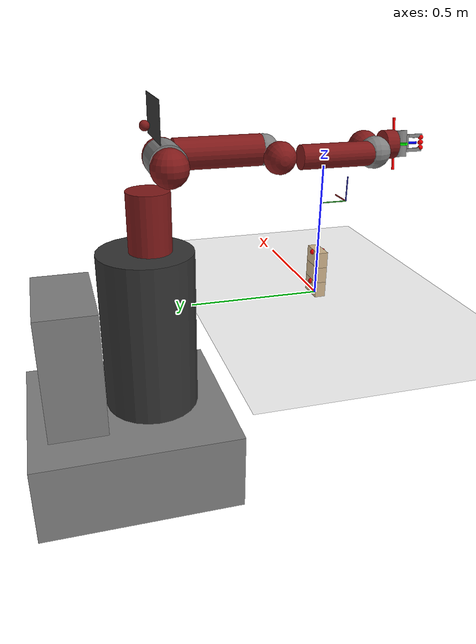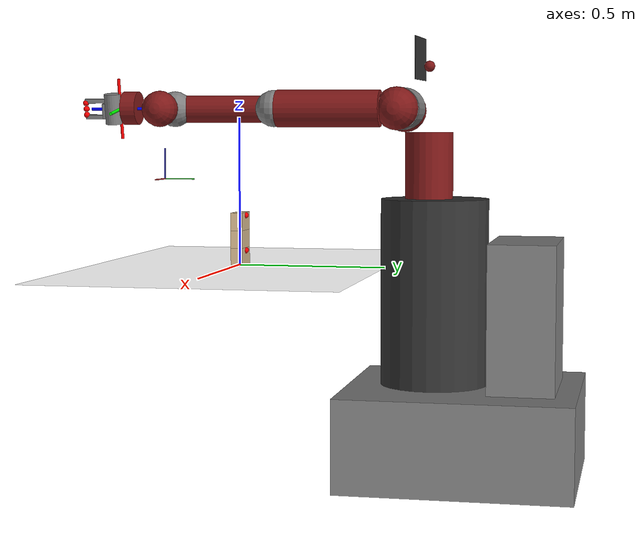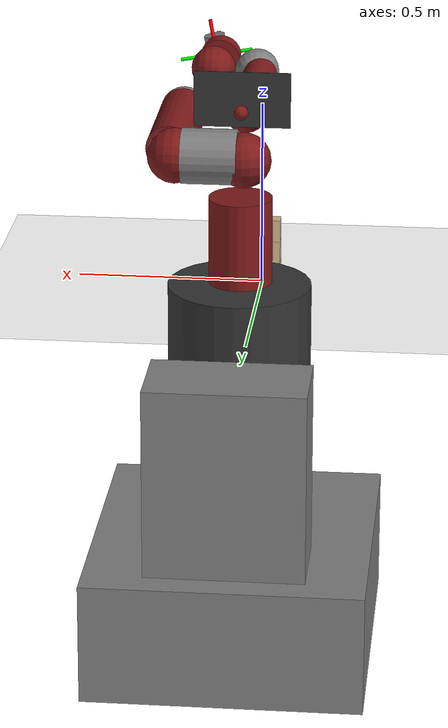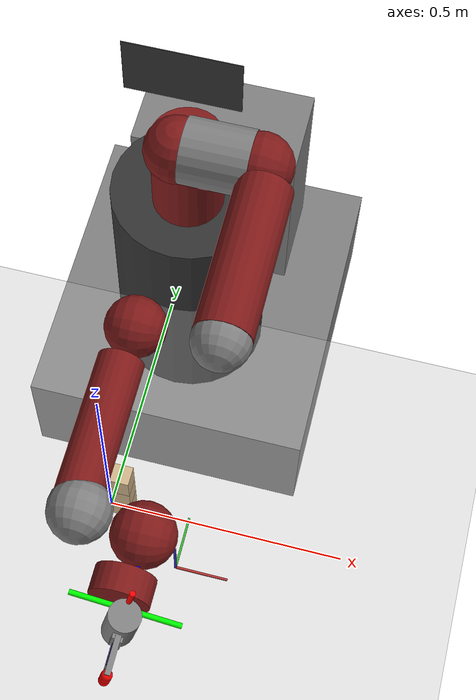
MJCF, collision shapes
<?xml version="1.0" ?><mujoco model="base">
  	<compiler angle="radian" meshdir="meshes/"/>
  	<option impratio="20" cone="elliptic"/>
  	<size nconmax="5000" njmax="5000"/>
  	<visual>
      		<map znear="0.001"/>
  	</visual>

  	<asset>
  		<texture builtin="flat" height="256" rgb1="1 1 1." rgb2=".2 .3 .4" type="skybox" width="256"/>
        		<texture builtin="checker" height="512" name="texplane" rgb1=".2 .3 .4" rgb2=".1 0.15 0.2" type="2d" width="512"/>
        		<material name="floorplane" reflectance="0.5" texrepeat="1 1" texture="texplane" texuniform="true"/>
    		<mesh file="D:\Documents\USC\Furniture\furniture\furniture-test\furniture\furniture\env\models\assets\robots\sawyer\meshes/pedestal.stl" name="pedestal"/>
        		<mesh file="D:\Documents\USC\Furniture\furniture\furniture-test\furniture\furniture\env\models\assets\robots\sawyer\meshes/base.stl" name="base"/>
        		<mesh file="D:\Documents\USC\Furniture\furniture\furniture-test\furniture\furniture\env\models\assets\robots\sawyer\meshes/l0.stl" name="l0"/>
        		<mesh file="D:\Documents\USC\Furniture\furniture\furniture-test\furniture\furniture\env\models\assets\robots\sawyer\meshes/head.stl" name="head"/>
        		<mesh file="D:\Documents\USC\Furniture\furniture\furniture-test\furniture\furniture\env\models\assets\robots\sawyer\meshes/l1.stl" name="l1"/>
        		<mesh file="D:\Documents\USC\Furniture\furniture\furniture-test\furniture\furniture\env\models\assets\robots\sawyer\meshes/l2.stl" name="l2"/>
        		<mesh file="D:\Documents\USC\Furniture\furniture\furniture-test\furniture\furniture\env\models\assets\robots\sawyer\meshes/l3.stl" name="l3"/>
        		<mesh file="D:\Documents\USC\Furniture\furniture\furniture-test\furniture\furniture\env\models\assets\robots\sawyer\meshes/l4.stl" name="l4"/>
        		<mesh file="D:\Documents\USC\Furniture\furniture\furniture-test\furniture\furniture\env\models\assets\robots\sawyer\meshes/l5.stl" name="l5"/>
        		<mesh file="D:\Documents\USC\Furniture\furniture\furniture-test\furniture\furniture\env\models\assets\robots\sawyer\meshes/l6.stl" name="l6"/>
    		<mesh name="electric_gripper_base" file="D:\Documents\USC\Furniture\furniture\furniture-test\furniture\furniture\env\models\assets\grippers\meshes/two_finger_gripper/electric_gripper_base.STL"/>
        		<mesh name="standard_narrow" file="D:\Documents\USC\Furniture\furniture\furniture-test\furniture\furniture\env\models\assets\grippers\meshes/two_finger_gripper/standard_narrow.STL"/>
        		<mesh name="half_round_tip" file="D:\Documents\USC\Furniture\furniture\furniture-test\furniture\furniture\env\models\assets\grippers\meshes/two_finger_gripper/half_round_tip.STL"/>
    		<texture file="D:\Documents\USC\Furniture\furniture\furniture-test\furniture\furniture\env\models\assets\objects\../textures/light-wood.png" name="tex-light-wood" type="2d"/>
    		<material name="light-wood" reflectance="0.5" texrepeat="20 20" texture="tex-light-wood" texuniform="true"/>
  	</asset>

  	<actuator>
  		<velocity ctrllimited="true" ctrlrange="-1.74 1.74" joint="right_j0" kv="8.0" name="vel_right_j0"/>
        		<velocity ctrllimited="true" ctrlrange="-1.328 1.328" joint="right_j1" kv="7.0" name="vel_right_j1"/>
        		<velocity ctrllimited="true" ctrlrange="-1.957 1.957" joint="right_j2" kv="6.0" name="vel_right_j2"/>
        		<velocity ctrllimited="true" ctrlrange="-1.957 1.957" joint="right_j3" kv="4.0" name="vel_right_j3"/>
        		<velocity ctrllimited="true" ctrlrange="-3.485 3.485" joint="right_j4" kv="2.0" name="vel_right_j4"/>
        		<velocity ctrllimited="true" ctrlrange="-3.485 3.485" joint="right_j5" kv="0.5" name="vel_right_j5"/>
        		<velocity ctrllimited="true" ctrlrange="-4.545 4.545" joint="right_j6" kv="0.1" name="vel_right_j6"/>
    		<position ctrllimited="true" ctrlrange="-0.020833 0.0115" joint="r_gripper_r_finger_joint" kp="10000" name="gripper_r_gripper_r_finger_joint" forcelimited="true" forcerange="-20 20"/>
        		<position ctrllimited="true" ctrlrange="-0.0115 0.020833" joint="r_gripper_l_finger_joint" kp="10000" name="gripper_r_gripper_l_finger_joint" forcelimited="true" forcerange="-20 20"/>
    	</actuator>

  	<worldbody>
  		<geom condim="3" rgba="0.7 0.7 0.7 1" name="FLOOR" pos="0 0 0" size="0.75 0.5 0.0625" type="plane" friction="2.0 0.005 0.0001"/>

        		<body name="VR_R" pos="0.2 -0.2 0.3">
            			<site rgba="0.7 0.2 0.2 1" name="VR_R_x" pos="0.05 0 0" size="0.05 0.002 0.002" type="box"/>
            			<site rgba="0.2 0.7 0.2 1" name="VR_R_y" pos="0 0.05 0" size="0.002 0.05 0.002" type="box"/>
            			<site rgba="0.2 0.2 0.7 1" name="VR_R_z" pos="0 0 0.05" size="0.002 0.002 0.05" type="box"/>
        		</body>

        		<light diffuse=".8 .8 .8" dir=".5 -.3 -.8" directional="true" pos="0 0 2.0" specular="0.3 0.3 0.3" castshadow="true"/>

        		<camera mode="fixed" name="frontview" pos="0 -1.2 0.9" quat="0.86 0.51 0. 0." fovy="60"/>
        		<camera mode="fixed" name="sideview" pos="-2.5 0. 0.5" quat="0.5468 0.4482 -0.4482 -0.5468"/>
    		<body name="base" pos="0.0 0.65 0.21300000000000008" quat="1 0 0 -1">
            			<inertial diaginertia="0 0 0" mass="0" pos="0 0 0"/>
            			<body name="controller_box" pos="0 0 0">
                				<inertial diaginertia="1.71363 1.27988 0.809981" mass="46.64" pos="-0.325 0 -0.38"/>
                				<geom name="controller_box_visual" conaffinity="0" contype="0" pos="-0.325 0 -0.38" size="0.11 0.2 0.265" type="box"/>
            			</body>
            			<body name="pedestal_feet" pos="0 0 0">
                				<inertial diaginertia="8.16095 9.59375 15.0785" mass="167.09" pos="-0.1225 0 -0.758"/>
                				<geom name="pedestal_feet_visual" conaffinity="0" contype="0" pos="-0.1225 0 -0.758" size="0.385 0.35 0.155" type="box"/>
            			</body>
            			<body name="torso" pos="0 0 0">
                				<inertial diaginertia="1e-08 1e-08 1e-08" mass="0.0001" pos="0 0 0"/>
                				<geom name="torso_visual" conaffinity="0" contype="0" group="1" rgba="0.2 0.2 0.2 1" size="0.05 0.05 0.05" type="box"/>
            			</body>
            			<body name="pedestal" pos="0 0 0">
                				<inertial diaginertia="6.0869 5.81635 4.20915" mass="60.864" pos="0 0 0" quat="0.659267 -0.259505 -0.260945 0.655692"/>
                				<geom name="pedestal_visual" conaffinity="0" contype="0" group="1" mesh="pedestal" pos="0.26 0.345 -0.91488" quat="0.5 0.5 -0.5 -0.5" rgba="0.2 0.2 0.2 1" type="mesh"/>
                				<geom name="pedestal_collision" pos="-0.02 0 -0.29" rgba="0.2 0.2 0.2 1" size="0.18 0.31" type="cylinder"/>
            			</body>
            			<body name="right_arm_base_link" pos="0 0 0">
                				<inertial diaginertia="0.00740351 0.00681776 0.00672942" mass="2.0687" pos="-0.0006241 -2.8025e-05 0.065404" quat="-0.209285 0.674441 0.227335 0.670558"/>
                				<geom name="right_arm_base_link_visual" conaffinity="0" contype="0" group="1" mesh="base" rgba="0.5 0.1 0.1 1" type="mesh"/>
                				<geom name="right_arm_base_link_collision" pos="0 0 0.12" rgba="0.5 0.1 0.1 1" size="0.08 0.12" type="cylinder"/>
                				<body name="right_l0" pos="0 0 0.08">
                    					<inertial diaginertia="0.0651588 0.0510944 0.0186218" mass="5.3213" pos="0.024366 0.010969 0.14363" quat="0.894823 0.00899958 -0.170275 0.412573"/>
                    					<joint axis="0 0 1" limited="true" name="right_j0" pos="0 0 0" range="-3.0503 3.0503"/>
                    					<geom name="right_l0_visual" conaffinity="0" contype="0" group="1" mesh="l0" rgba="0.5 0.1 0.1 1" type="mesh"/>
                    					<geom name="right_l0_collision" pos="0.08 0 0.23" rgba="0.5 0.1 0.1 1" size="0.07"/>
                    					<body name="head" pos="0 0 0.2965">
                        						<inertial diaginertia="0.0118334 0.00827089 0.00496574" mass="1.5795" pos="0.0053207 -2.6549e-05 0.1021" quat="0.999993 7.08405e-05 -0.00359857 -0.000626247"/>

                            						<geom name="head_visual" conaffinity="0" contype="0" group="1" mesh="head" rgba="0.5 0.1 0.1 1" type="mesh"/>
                            						<geom name="head_collision" pos="0 0 0.08" rgba="0.5 0.1 0.1 1" size="0.018"/>
                            						<body name="screen" pos="0.03 0 0.105" quat="0.5 0.5 0.5 0.5">
                                							<inertial diaginertia="1e-08 1e-08 1e-08" mass="0.0001" pos="0 0 0"/>
                                							<geom name="screen_visual" conaffinity="0" contype="0" group="1" rgba="0.2 0.2 0.2 1" size="0.12 0.07 0.001" type="box"/>
                                							<geom name="screen_collision" rgba="0.2 0.2 0.2 1" size="0.001"/>
                            						</body>
                            						<body name="head_camera" pos="0.0228027 0 0.216572" quat="0.342813 -0.618449 0.618449 -0.342813">
                                							<inertial diaginertia="0 0 0" mass="0" pos="0.0228027 0 0.216572" quat="0.342813 -0.618449 0.618449 -0.342813"/>
                            						</body>
                        					</body>
                        					<body name="right_torso_itb" pos="-0.055 0 0.22" quat="0.707107 0 -0.707107 0">
                            						<inertial diaginertia="1e-08 1e-08 1e-08" mass="0.0001" pos="0 0 0"/>
                        					</body>
                        					<body name="right_l1" pos="0.081 0.05 0.237" quat="0.5 -0.5 0.5 0.5">
                            						<inertial diaginertia="0.0224339 0.0221624 0.0097097" mass="4.505" pos="-0.0030849 -0.026811 0.092521" quat="0.424888 0.891987 0.132364 -0.0794296"/>
                            						<joint axis="0 0 1" limited="true" name="right_j1" pos="0 0 0" range="-3.8095 2.2736"/>
                            						<geom name="right_l1_visual" conaffinity="0" contype="0" group="1" mesh="l1" rgba="0.5 0.1 0.1 1" type="mesh"/>
                            						<geom name="right_l1_collision" pos="0 0 0.1225" rgba="0.5 0.1 0.1 1" size="0.07"/>
                            						<body name="right_l2" pos="0 -0.14 0.1425" quat="0.707107 0.707107 0 0">
                                							<inertial diaginertia="0.0257928 0.025506 0.00292515" mass="1.745" pos="-0.00016044 -0.014967 0.13582" quat="0.707831 -0.0524761 0.0516007 0.702537"/>
                                							<joint axis="0 0 1" limited="true" name="right_j2" pos="0 0 0" range="-3.0426 3.0426"/>
                                							<geom name="right_l2_visual" conaffinity="0" contype="0" group="1" mesh="l2" rgba="0.5 0.1 0.1 1" type="mesh"/>
                                							<geom name="right_l2_collision" pos="0 0 0.08" rgba="0.5 0.1 0.1 1" size="0.06 0.17" type="cylinder"/>
                                							<body name="right_l3" pos="0 -0.042 0.26" quat="0.707107 -0.707107 0 0">
                                    								<inertial diaginertia="0.0102404 0.0096997 0.00369622" mass="2.5097" pos="-0.0048135 -0.0281 -0.084154" quat="0.902999 0.385391 -0.0880901 0.168247"/>
                                    								<joint axis="0 0 1" limited="true" name="right_j3" pos="0 0 0" range="-3.0439 3.0439"/>
                                    								<geom name="right_l3_visual" conaffinity="0" contype="0" group="1" mesh="l3" rgba="0.5 0.1 0.1 1" type="mesh"/>
                                    								<geom name="right_l3_collision" pos="0 -0.01 -0.12" rgba="0.5 0.1 0.1 1" size="0.06"/>
                                    								<body name="right_l4" pos="0 -0.125 -0.1265" quat="0.707107 0.707107 0 0">
                                        									<inertial diaginertia="0.0136549 0.0135493 0.00127353" mass="1.1136" pos="-0.0018844 0.0069001 0.1341" quat="0.803612 0.031257 -0.0298334 0.593582"/>
                                        									<joint axis="0 0 1" limited="true" name="right_j4" pos="0 0 0" range="-2.9761 2.9761"/>
                                        									<geom name="right_l4_visual" conaffinity="0" contype="0" group="1" mesh="l4" rgba="0.5 0.1 0.1 1" type="mesh"/>
                                        									<geom name="right_l4_collision" pos="0 0 0.11" rgba="0.5 0.1 0.1 1" size="0.045 0.15" type="cylinder"/>
                                        									<body name="right_arm_itb" pos="-0.055 0 0.075" quat="0.707107 0 -0.707107 0">
                                            										<inertial diaginertia="1e-08 1e-08 1e-08" mass="0.0001" pos="0 0 0"/>
                                        									</body>
                                        									<body name="right_l5" pos="0 0.031 0.275" quat="0.707107 -0.707107 0 0">
                                            										<inertial diaginertia="0.00474131 0.00422857 0.00190672" mass="1.5625" pos="0.0061133 -0.023697 0.076416" quat="0.404076 0.9135 0.0473125 0.00158335"/>
                                            										<joint axis="0 0 1" limited="true" name="right_j5" pos="0 0 0" range="-2.9761 2.9761" damping="0.2"/>
                                            										<geom name="right_l5_visual" conaffinity="0" contype="0" group="1" mesh="l5" rgba="0.5 0.1 0.1 1" type="mesh"/>
                                            										<geom name="right_l5_collision" pos="0 0 0.1" rgba="0.5 0.1 0.1 1" size="0.06"/>
                                            										<body name="right_hand_camera" pos="0.039552 -0.033 0.0695" quat="0.707107 0 0.707107 0">
                                                											<inertial diaginertia="0 0 0" mass="0" pos="0.039552 -0.033 0.0695" quat="0.707107 0 0.707107 0"/>
                                            										</body>
                                            										<body name="right_wrist" pos="0 0 0.10541" quat="0.707107 0.707107 0 0">
                                                											<inertial diaginertia="0 0 0" mass="0" pos="0 0 0.10541" quat="0.707107 0.707107 0 0"/>
                                            										</body>
                                            										<body name="right_l6" pos="0 -0.11 0.1053" quat="0.0616248 0.06163 -0.704416 0.704416">
                                                											<camera name="wrist_cam" pos="0 0.1 0" euler="-2.7 0 0"/>
                                                											<inertial diaginertia="0.000360258 0.000311068 0.000214974" mass="0.3292" pos="-8.0726e-06 0.0085838 -0.0049566" quat="0.479044 0.515636 -0.513069 0.491322"/>
                                                											<joint axis="0 0 1" limited="true" name="right_j6" pos="0 0 0" range="-4.7124 4.7124" damping="0.1"/>
                                                											<geom name="right_l6_visual" conaffinity="0" contype="0" group="1" mesh="l6" rgba="0.5 0.1 0.1 1" type="mesh"/>
                                                											<geom name="right_l6_collision" pos="0 0.015 -0.01" rgba="0.5 0.1 0.1 1" size="0.055 0.025" type="cylinder"/>
                                                											<body name="right_hand" pos="0 0 0.0245" quat="0.707105 0 0 0.707108">

                                                    												<site name="ee" pos="0 0 0" size="0.01 0.01 0.01" rgba="0 0 1 1" type="sphere" group="1"/>
                                                    												<site name="ee_x" pos="0 0 0" size="0.005 .1" quat="0.707105 0.707108 0 0 " rgba="1 0 0 1" type="cylinder" group="1"/>
                                                    												<site name="ee_z" pos="0 0 0" size="0.005 .1" quat="0.707105 0 0 0.707108" rgba="0 0 1 1" type="cylinder" group="1"/>
                                                    												<site name="ee_y" pos="0 0 0" size="0.005 .1" quat="0.707105 0 0.707108 0 " rgba="0 1 0 1" type="cylinder" group="1"/>

                                                												<body name="right_gripper_base" pos="0 0 0.025">
            													<site name="ft_frame" pos="0 0 0" size="0.01 0.01 0.01" rgba="1 0 0 1" type="sphere" group="1"/>
            													<inertial pos="0 0 0" quat="-0.5 0.5 0.5 0.5" mass="0.3" diaginertia="3e-08 2e-08 2e-08"/>
            													<geom name="right_gripper_base_visual" quat="0 0 0.707107 0.707107" type="mesh" contype="0" conaffinity="0" group="1" mesh="electric_gripper_base"/>
            													<geom name="right_gripper_base_collision" size="0.029 0.05" quat="0 0 0.707107 0.707107" type="cylinder"/>
            													<body name="right_gripper" pos="0 0 0.095">
                														<inertial pos="0 0 0" mass="0.0001" diaginertia="0 0 0"/>

                														<site name="grip_site" pos="0 0 -0.03" size="0.01 0.01 0.01" rgba="0 0 0 0" type="sphere" group="1"/>

                														<site name="griptip_site" pos="0 0 0" size="0.01 0.01 0.01" rgba="1 0 0 1" type="sphere" group="1"/>
                														<site name="lgriptip_site" pos="0 0.02 0" size="0.01 0.01 0.01" rgba="1 0 0 1" type="sphere" group="1"/>
                														<site name="rgriptip_site" pos="0 -0.02 0" size="0.01 0.01 0.01" rgba="1 0 0 1" type="sphere" group="1"/>

                														<site name="grip_site_cylinder" pos="0 0 0" size="0.005 10" rgba="0 0 0 0" type="cylinder" group="1"/>

                														<camera mode="fixed" name="eye_in_hand" pos="0 0 0" quat="0 -1 1 0" fovy="75"/>
            													</body>

            													<body name="r_gripper_l_finger" pos="0 0.01 0.02">
                														<inertial pos="0 0 0" quat="0 0 0 -1" mass="0.02" diaginertia="0.01 0.01 0.01"/>
                														<joint name="r_gripper_l_finger_joint" pos="0 0 0" axis="0 1 0" type="slide" limited="true" range="-0.0115 0.020833" damping="100"/>
                														<geom name="r_gripper_l_finger_visual" quat="0 0 0 -1" type="mesh" contype="0" conaffinity="0" group="1" mesh="standard_narrow"/>
                														<geom size="0.005 0.00675 0.0375" pos="0 0.01725 0.04" quat="0 0 0 -1" type="box" conaffinity="1" contype="0" name="l_finger_g0" friction="0 0 0"/>
                														<geom size="0.005 0.025 0.0085" pos="-0.005 -0.003 0.0083" quat="0 0 0 -1" type="box" conaffinity="1" contype="0" name="l_finger_g1" friction="0 0 0"/>

                														<body name="r_gripper_l_finger_tip" pos="0 0.01725 0.075">
                    															<inertial pos="0 0 0" quat="0 0 0 1" mass="0.01" diaginertia="0.01 0.01 0.01"/>
                    															<geom name="r_gripper_l_finger_tip_visual" quat="0 0 0 1" type="mesh" contype="0" conaffinity="0" group="1" mesh="half_round_tip"/>

                															<geom size="0.004 0.004 0.0185" pos="0 -0.0045 -0.015" quat="0 0 0 1" type="box" conaffinity="1" contype="0" name="l_fingertip_g0" friction="2 10 0.5"/>

                														</body>
            													</body>
            													<body name="r_gripper_r_finger" pos="0 -0.01 0.02">
                														<inertial pos="0 0 0" mass="0.02" diaginertia="0.01 0.01 0.01"/>
                														<joint name="r_gripper_r_finger_joint" pos="0 0 0" axis="0 1 0" type="slide" limited="true" range="-0.020833 0.0115" damping="100"/>
                														<geom name="r_gripper_r_finger_visual" type="mesh" contype="0" conaffinity="0" group="1" mesh="standard_narrow"/>
                														<geom size="0.005 0.00675 0.0375" pos="0 -0.01725 0.04" type="box" conaffinity="1" contype="0" name="r_finger_g0" friction="0 0 0"/>
                														<geom size="0.005 0.025 0.0085" pos="0.005 0.003 0.0083" type="box" conaffinity="1" contype="0" name="r_finger_g1" friction="0 0 0"/>
                														<body name="r_gripper_r_finger_tip" pos="0 -0.01725 0.075">
                    															<inertial pos="0 0 0" mass="0.01" diaginertia="0.01 0.01 0.01"/>
                    															<geom name="r_gripper_r_finger_tip_visual" type="mesh" contype="0" conaffinity="0" group="1" mesh="half_round_tip"/>
                    															<geom size="0.004 0.004 0.0185" pos="0 0.0045 -0.015" type="box" conaffinity="1" contype="0" name="r_fingertip_g0" friction="2 10 0.5"/>
                														</body>
            													</body>
        												</body>
    											</body>
                                            										</body>
                                        									</body>
                                        									<body name="right_l4_2" pos="0 0 0">
                                            										<inertial diaginertia="1e-08 1e-08 1e-08" mass="1e-08" pos="1e-08 1e-08 1e-08" quat="0.820473 0.339851 -0.17592 0.424708"/>
                                            										<geom name="right_l4_2_collision" pos="0 0.01 0.26" size="0.06"/>
                                        									</body>
                                    								</body>
                                							</body>
                                							<body name="right_l2_2" pos="0 0 0">
                                    								<inertial diaginertia="1e-08 1e-08 1e-08" mass="1e-08" pos="1e-08 1e-08 1e-08" quat="0.820473 0.339851 -0.17592 0.424708"/>
                                    								<geom name="right_l2_2_collision" pos="0 0 0.26" size="0.06"/>
                                							</body>
                            						</body>
                            						<body name="right_l1_2" pos="0 0 0">
                                							<inertial diaginertia="1e-08 1e-08 1e-08" mass="1e-08" pos="1e-08 1e-08 1e-08" quat="0.820473 0.339851 -0.17592 0.424708"/>
                                							<geom name="right_l1_2_collision" pos="0 0 0.035" size="0.07 0.07" type="cylinder"/>
                            						</body>
                        					</body>
                    				</body>
                			</body>
            		</body>
        		<body pos="0.0 0.0 0.03" quat="1 0 0 0" name="1_block_l">
      			<geom density="100" material="light-wood" name="1_block_l-0" pos="0 0 0" rgba="0.82 0.71 0.55 1" size="0.05 0.02 0.03" solref="0.001 1" type="box" friction="1 10 0.5"/>
      			<site name="1_block_l_ltgt_site0" pos="0 -0.02 0.02" size="0.01 0.01 0.01" rgba="1 0 0 1" type="sphere" group="1"/>
      			<site name="1_block_l_rtgt_site0" pos="0 0.02 0.02" size="0.01 0.01 0.01" rgba="1 0 0 1" type="sphere" group="1"/>
      			<site name="left-mid,0,180,conn_site1" pos="0. 0. -0.03" quat="1 0 0 0" rgba="0.9019 0.0980 0.2941 0.3" size="0.01"/>
      			<site name="left-right,0,180,conn_site2" pos="0. 0. 0.03" quat="1 0 0 0" rgba="0.9019 0.0980 0.2941 0.3" size="0.01"/>
      			<site name="1_block_l_bottom_site" pos="0.0 0.0 -0.03" rgba="0 0 1 0.3" size="0.0015"/>
      			<site name="1_block_l_top_site" pos="0.0 0.0 0.03" rgba="0 0 1 0.3" size="0.0015"/>
      			<site name="1_block_l_horizontal_radius_site" pos="0. 0. 0." rgba="0 0 1 0." size="0.05"/>
    			<site pos="0 0 0" size="0.002 0.002 0.002" rgba="1 0 0 0" type="sphere" name="1_block_l"/>			<joint name="1_block_l" type="free" damping="0.0001"/>		</body>
    		<body pos="0.0 0.0 0.09" quat="1 0 0 0" name="2_block_m">
      			<geom density="100" material="light-wood" name="2_block_m-0" pos="0 0 0" rgba="0.82 0.71 0.55 1" size="0.05 0.02 0.03" solref="0.001 1" type="box" friction="1 10 0.5"/>
      			<site name="mid-left,0,180,conn_site1" pos="0. 0. 0.03" quat="1 0 0 0" rgba="0.9019 0.0980 0.2941 0.3" size="0.01"/>
      			<site name="2_block_m_bottom_site" pos="0.0 0.0 -0.03" rgba="0 0 1 0.3" size="0.0015"/>
      			<site name="2_block_m_top_site" pos="0.0 0.0 0.03" rgba="0 0 1 0.3" size="0.0015"/>
      			<site name="2_block_m_horizontal_radius_site" pos="0. 0. 0." rgba="0 0 1 0." size="0.05"/>
    			<site pos="0 0 0" size="0.002 0.002 0.002" rgba="1 0 0 0" type="sphere" name="2_block_m"/>			<joint name="2_block_m" type="free" damping="0.0001"/>		</body>
    		<body pos="0.0 0.0 0.15" quat="1 0 0 0" name="3_block_r">
      			<geom density="100" material="light-wood" name="3_block_r-0" pos="0 0 0" rgba="0.82 0.71 0.55 1" size="0.05 0.02 0.03" solref="0.001 1" type="box" friction="1 10 0.5"/>
      			<site name="3_block_r_ltgt_site0" pos="0 -0.02 0.02" size="0.01 0.01 0.01" rgba="1 0 0 1" type="sphere" group="1"/>
      			<site name="3_block_r_rtgt_site0" pos="0 0.02 0.02" size="0.01 0.01 0.01" rgba="1 0 0 1" type="sphere" group="1"/>
      			<site name="right-left,0,180,conn_site1" pos="0. 0. -0.03" quat="1 0 0 0" rgba="0.9019 0.0980 0.2941 0.3" size="0.01"/>
      			<site name="3_block_r_bottom_site" pos="0.0 0.0 -0.03" rgba="0 0 1 0.3" size="0.0015"/>
      			<site name="3_block_r_top_site" pos="0.0 0.0 0.03" rgba="0 0 1 0.3" size="0.0015"/>
      			<site name="3_block_r_horizontal_radius_site" pos="0. 0. 0." rgba="0 0 1 0." size="0.05"/>
    			<site pos="0 0 0" size="0.002 0.002 0.002" rgba="1 0 0 0" type="sphere" name="3_block_r"/>			<joint name="3_block_r" type="free" damping="0.0001"/>		</body>
  	</worldbody>

  	<equality>
  		<weld active="false" body1="1_block_l" body2="2_block_m" solimp="1 1 0.5" solref="0.01 0.3"/>
    		<weld active="false" body1="1_block_l" body2="3_block_r" solimp="1 1 0.5" solref="0.01 0.3"/>
  	</equality>
	<sensor>		<force name="force_ee" site="ft_frame"/>
        		<torque name="torque_ee" site="ft_frame"/>
    	</sensor>	<contact/>	<default/></mujoco>
